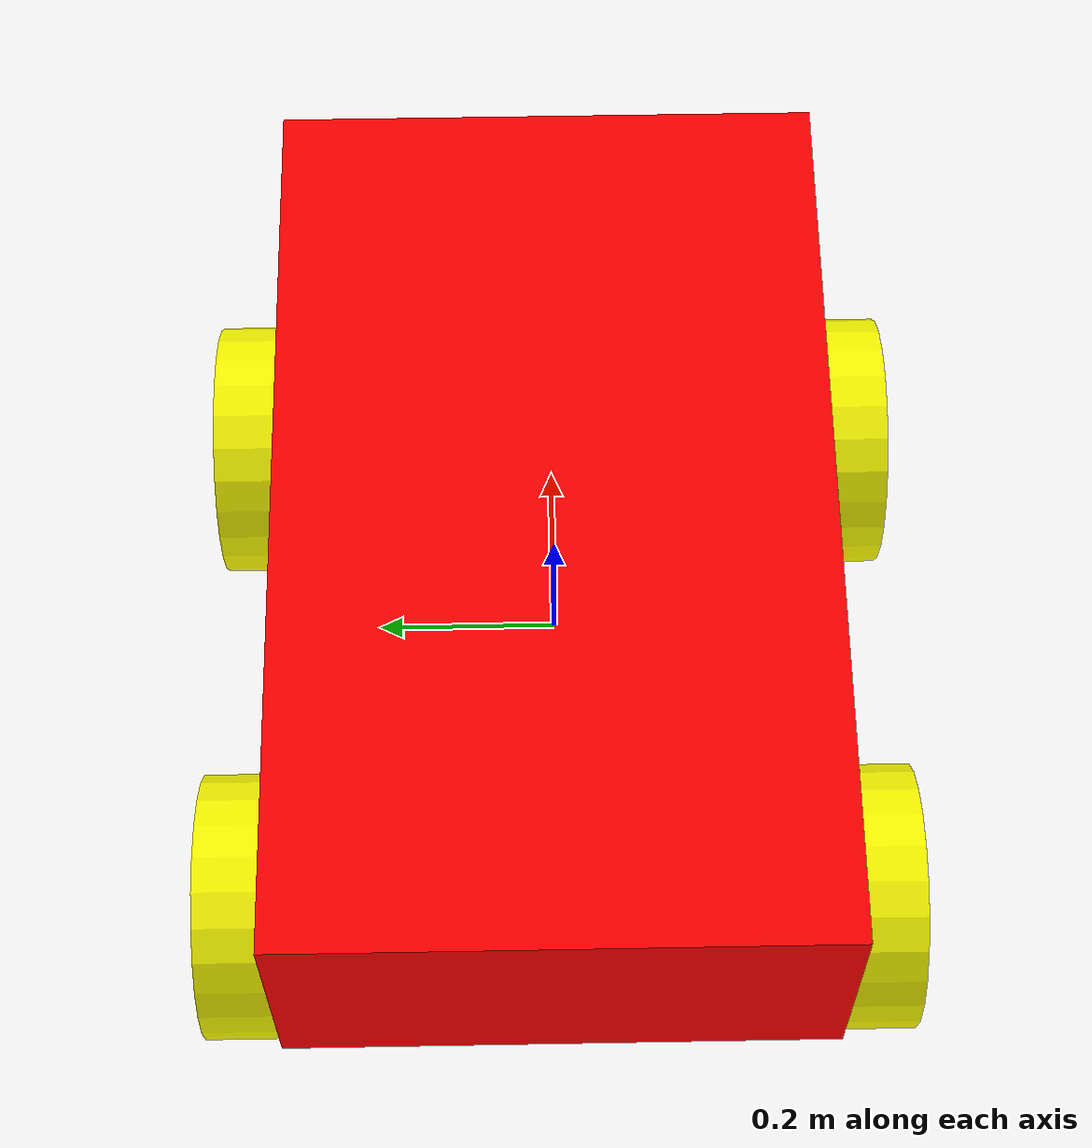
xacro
<?xml version="1.0"?>
<robot xmlns:xacro="http://www.ros.org/wiki/xacro" name="fourwheel_robot">
    <xacro:arg name="initial_positions_file" default="initial_positions.yaml" />

    <!-- Import fourwheel_robot urdf file -->
    <xacro:include filename="$(find platform)/urdf/platform.xacro" />

    <!-- Import control_xacro -->
    <xacro:include filename="fourwheel_robot.ros2_control.xacro" />

    <xacro:fourwheel_robot_ros2_control name="FakeSystem" initial_positions_file="$(arg initial_positions_file)"/>

</robot>

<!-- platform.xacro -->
<!-- http://wiki.ros.org/urdf/XML/link -->
<robot xmlns:xacro="http://ros.org/wiki/xacro" name="fourwheel_robot">

	<!-- This is the body of the robot -->
	<link name="body_link">
		<visual>
			<origin rpy="0 0 0" xyz="0 0 0.15"/>
			<geometry>
				<box size="1 0.6 0.3" />
			</geometry>
			<material name="red">
				<color rgba="1 0 0 1"/>
			</material>
		</visual>
	</link>

	<!-- This is the back right wheel of the robot -->
	<joint name="wheel1_joint" type="continuous" >
		<parent link="body_link"/>
		<child link="wheel1_link" />
		<origin xyz="-0.3 -0.35 -0.1" rpy="0 0 0" />
		<axis xyz="0 1 0" />
	</joint>
	<link name="wheel1_link">
		<visual>
			<origin rpy="1.570795 0 0" xyz="0 0 0" />
			<geometry>
				<cylinder length="0.1" radius="0.15" />
			</geometry>
			<material name="yellow">
				<color rgba="1 1 0 1"/>
			</material>
		</visual>
	</link>

	<!-- This is the back left wheel of the robot -->
	<joint name="wheel2_joint" type="continuous" >
		<parent link="body_link"/>
		<child link="wheel2_link" />
		<origin xyz="-0.3 0.35 -0.1" rpy="0 0 0" />
		<axis xyz="0 1 0" />
	</joint>
	<link name="wheel2_link">
		<visual>
			<origin rpy="1.570795 0 0" xyz="0 0 0" />
			<geometry>
				<cylinder length="0.1" radius="0.15" />
			</geometry>
			<material name="yellow">
				<color rgba="1 1 0 1"/>
			</material>
		</visual>
	</link>

	<!-- This is the front right wheel of the robot -->
	<joint name="wheel3_joint" type="continuous" >
		<parent link="body_link"/>
		<child link="wheel3_link" />
		<origin xyz="0.3 -0.35 -0.1" rpy="0 0 0" />
		<axis xyz="0 1 0" />
	</joint>
	<link name="wheel3_link">
		<visual>
			<origin rpy="1.570795 0 0" xyz="0 0 0" />
			<geometry>
				<cylinder length="0.1" radius="0.15" />
			</geometry>
			<material name="yellow">
				<color rgba="1 1 0 1"/>
			</material>
		</visual>
	</link>

	<!-- This is the front left wheel of the robot -->
	<joint name="wheel4_joint" type="continuous" >
		<parent link="body_link"/>
		<child link="wheel4_link" />
		<origin xyz="0.3 0.35 -0.1" rpy="0 0 0" />
		<axis xyz="0 1 0" />
	</joint>
	<link name="wheel4_link">
		<visual>
			<origin rpy="1.570795 0 0" xyz="0 0 0" />
			<geometry>
				<cylinder length="0.1" radius="0.15" />
			</geometry>
			<material name="yellow">
				<color rgba="1 1 0 1"/>
			</material>
		</visual>
	</link>
</robot>
